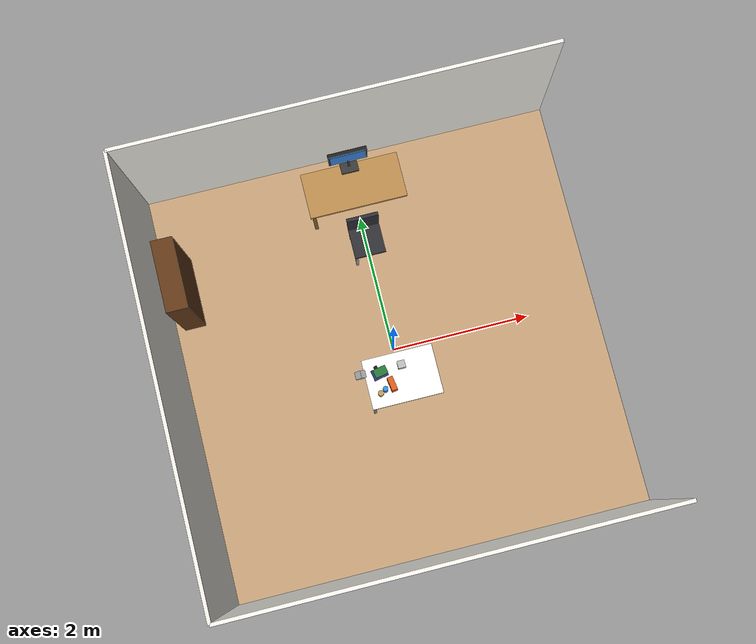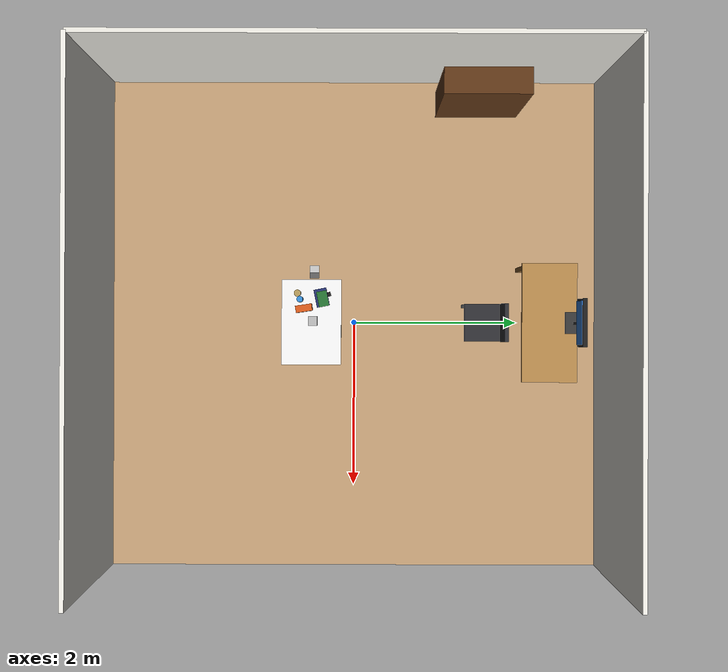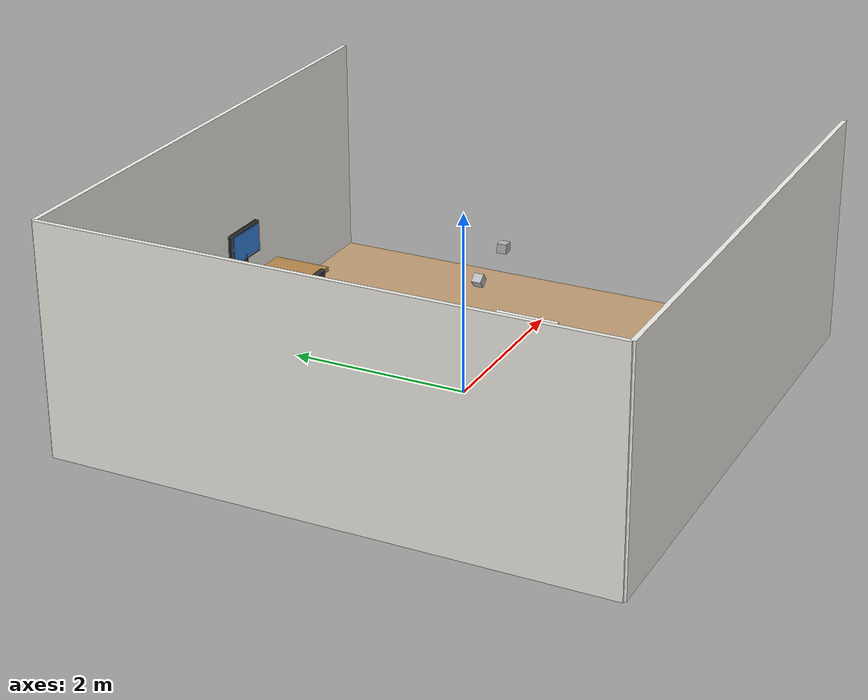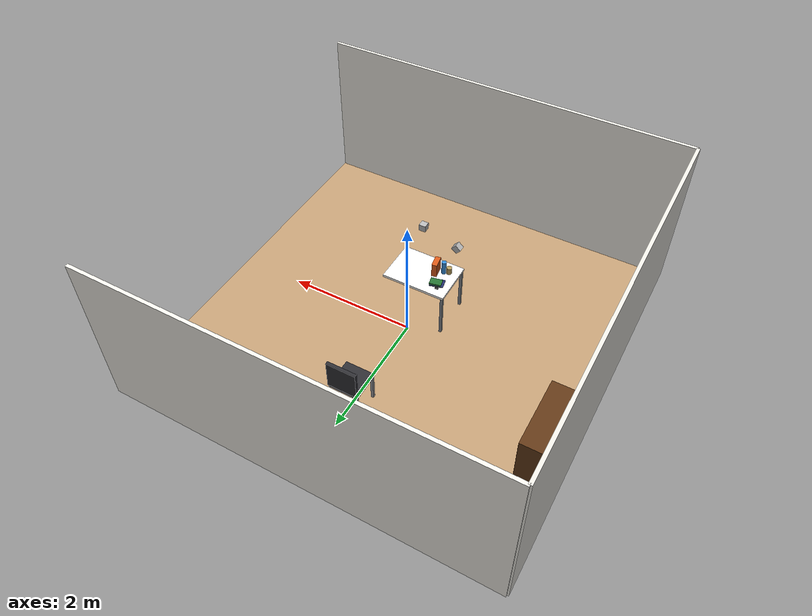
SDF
<sdf version="1.10">
 <world name="bps_room">
  <model name="floor">
   <static>true</static>
   <link name="link">
    <collision name="collision"><geometry><box><size>6 6 0.02</size></box></geometry></collision>
    <visual name="visual">
     <geometry><box><size>6 6 0.02</size></box></geometry>
     <material>
      <ambient>0.75999999 0.620000005 0.460000008 1</ambient>
      <diffuse>0.75999999 0.620000005 0.460000008 1</diffuse>
     </material>
    </visual>
    <inertial>
     <mass>1</mass>
     <inertia><ixx>1</ixx><ixy>0</ixy><ixz>0</ixz><iyy>1</iyy><iyz>0</iyz><izz>1</izz></inertia>
    </inertial>
   </link>
  </model>
  <model name="wall_north">
   <static>true</static>
   <pose>0 3 1.25 0 0 0</pose>
   <link name="link">
    <collision name="collision">
     <geometry><box><size>6 0.050000000000000003 2.5</size></box></geometry>
    </collision>
    <visual name="visual">
     <geometry><box><size>6 0.050000000000000003 2.5</size></box></geometry>
     <material>
      <ambient>0.949999988 0.939999998 0.910000026 1</ambient>
      <diffuse>0.949999988 0.939999998 0.910000026 1</diffuse>
     </material>
    </visual>
    <inertial>
     <mass>1</mass>
     <inertia><ixx>1</ixx><ixy>0</ixy><ixz>0</ixz><iyy>1</iyy><iyz>0</iyz><izz>1</izz></inertia>
    </inertial>
   </link>
  </model>
  <model name="wall_south">
   <static>true</static>
   <pose>0 -3 1.25 0 0 0</pose>
   <link name="link">
    <collision name="collision">
     <geometry><box><size>6 0.050000000000000003 2.5</size></box></geometry>
    </collision>
    <visual name="visual">
     <geometry><box><size>6 0.050000000000000003 2.5</size></box></geometry>
     <material>
      <ambient>0.949999988 0.939999998 0.910000026 1</ambient>
      <diffuse>0.949999988 0.939999998 0.910000026 1</diffuse>
     </material>
    </visual>
    <inertial>
     <mass>1</mass>
     <inertia><ixx>1</ixx><ixy>0</ixy><ixz>0</ixz><iyy>1</iyy><iyz>0</iyz><izz>1</izz></inertia>
    </inertial>
   </link>
  </model>
  <model name="wall_west">
   <static>true</static>
   <pose>-3 0 1.25 0 0 0</pose>
   <link name="link">
    <collision name="collision">
     <geometry><box><size>0.050000000000000003 6 2.5</size></box></geometry>
    </collision>
    <visual name="visual">
     <geometry><box><size>0.050000000000000003 6 2.5</size></box></geometry>
     <material>
      <ambient>0.930000007 0.920000017 0.889999986 1</ambient>
      <diffuse>0.930000007 0.920000017 0.889999986 1</diffuse>
     </material>
    </visual>
    <inertial>
     <mass>1</mass>
     <inertia><ixx>1</ixx><ixy>0</ixy><ixz>0</ixz><iyy>1</iyy><iyz>0</iyz><izz>1</izz></inertia>
    </inertial>
   </link>
  </model>
  <model name="bookshelf_body">
   <static>true</static>
   <pose>-2.7000000000000002 1.5 0.75 0 0 0</pose>
   <link name="link">
    <collision name="collision"><geometry><box><size>0.29999999999999999 1 1.5</size></box></geometry></collision>
    <visual name="visual">
     <geometry><box><size>0.29999999999999999 1 1.5</size></box></geometry>
     <material>
      <ambient>0.379999995 0.219999999 0.0900000036 1</ambient>
      <diffuse>0.379999995 0.219999999 0.0900000036 1</diffuse>
     </material>
    </visual>
    <inertial>
     <mass>1</mass>
     <inertia><ixx>1</ixx><ixy>0</ixy><ixz>0</ixz><iyy>1</iyy><iyz>0</iyz><izz>1</izz></inertia>
    </inertial>
   </link>
  </model>
  <model name="shelf_1">
   <static>true</static>
   <pose>-2.7000000000000002 1.5 0.40000000000000002 0 0 0</pose>
   <link name="link">
    <collision name="collision">
     <geometry><box><size>0.28000000000000003 0.94999999999999996 0.02</size></box></geometry>
    </collision>
    <visual name="visual">
     <geometry><box><size>0.28000000000000003 0.94999999999999996 0.02</size></box></geometry>
     <material>
      <ambient>0.5 0.319999993 0.140000001 1</ambient>
      <diffuse>0.5 0.319999993 0.140000001 1</diffuse>
     </material>
    </visual>
    <inertial>
     <mass>1</mass>
     <inertia><ixx>1</ixx><ixy>0</ixy><ixz>0</ixz><iyy>1</iyy><iyz>0</iyz><izz>1</izz></inertia>
    </inertial>
   </link>
  </model>
  <model name="shelf_2">
   <static>true</static>
   <pose>-2.7000000000000002 1.5 0.84999999999999998 0 0 0</pose>
   <link name="link">
    <collision name="collision">
     <geometry><box><size>0.28000000000000003 0.94999999999999996 0.02</size></box></geometry>
    </collision>
    <visual name="visual">
     <geometry><box><size>0.28000000000000003 0.94999999999999996 0.02</size></box></geometry>
     <material>
      <ambient>0.5 0.319999993 0.140000001 1</ambient>
      <diffuse>0.5 0.319999993 0.140000001 1</diffuse>
     </material>
    </visual>
    <inertial>
     <mass>1</mass>
     <inertia><ixx>1</ixx><ixy>0</ixy><ixz>0</ixz><iyy>1</iyy><iyz>0</iyz><izz>1</izz></inertia>
    </inertial>
   </link>
  </model>
  <model name="shelf_3">
   <static>true</static>
   <pose>-2.7000000000000002 1.5 1.25 0 0 0</pose>
   <link name="link">
    <collision name="collision">
     <geometry><box><size>0.28000000000000003 0.94999999999999996 0.02</size></box></geometry>
    </collision>
    <visual name="visual">
     <geometry><box><size>0.28000000000000003 0.94999999999999996 0.02</size></box></geometry>
     <material>
      <ambient>0.5 0.319999993 0.140000001 1</ambient>
      <diffuse>0.5 0.319999993 0.140000001 1</diffuse>
     </material>
    </visual>
    <inertial>
     <mass>1</mass>
     <inertia><ixx>1</ixx><ixy>0</ixy><ixz>0</ixz><iyy>1</iyy><iyz>0</iyz><izz>1</izz></inertia>
    </inertial>
   </link>
  </model>
  <model name="books_row1">
   <static>true</static>
   <pose>-2.6200000000000001 1.5 0.62 0 0 0</pose>
   <link name="link">
    <visual name="visual">
     <geometry><box><size>0.040000000000000001 0.80000000000000004 0.20000000000000001</size></box></geometry>
     <material>
      <ambient>0.779999971 0.180000007 0.180000007 1</ambient>
      <diffuse>0.779999971 0.180000007 0.180000007 1</diffuse>
     </material>
    </visual>
    <inertial>
     <mass>1</mass>
     <inertia><ixx>1</ixx><ixy>0</ixy><ixz>0</ixz><iyy>1</iyy><iyz>0</iyz><izz>1</izz></inertia>
    </inertial>
   </link>
  </model>
  <model name="books_row2">
   <static>true</static>
   <pose>-2.6200000000000001 1.5 1.0600000000000001 0 0 0</pose>
   <link name="link">
    <visual name="visual">
     <geometry><box><size>0.040000000000000001 0.69999999999999996 0.17999999999999999</size></box></geometry>
     <material>
      <ambient>0.180000007 0.319999993 0.720000029 1</ambient>
      <diffuse>0.180000007 0.319999993 0.720000029 1</diffuse>
     </material>
    </visual>
    <inertial>
     <mass>1</mass>
     <inertia><ixx>1</ixx><ixy>0</ixy><ixz>0</ixz><iyy>1</iyy><iyz>0</iyz><izz>1</izz></inertia>
    </inertial>
   </link>
  </model>
  <model name="desk">
   <static>true</static>
   <pose>0 2.2999999999999998 0.75 0 0 0</pose>
   <link name="link">
    <collision name="collision">
     <geometry><box><size>1.3999999999999999 0.65000000000000002 0.050000000000000003</size></box></geometry>
    </collision>
    <visual name="visual">
     <geometry><box><size>1.3999999999999999 0.65000000000000002 0.050000000000000003</size></box></geometry>
     <material>
      <ambient>0.720000029 0.540000021 0.300000012 1</ambient>
      <diffuse>0.720000029 0.540000021 0.300000012 1</diffuse>
     </material>
    </visual>
    <inertial>
     <mass>1</mass>
     <inertia><ixx>1</ixx><ixy>0</ixy><ixz>0</ixz><iyy>1</iyy><iyz>0</iyz><izz>1</izz></inertia>
    </inertial>
   </link>
  </model>
  <model name="desk_leg_left">
   <static>true</static>
   <pose>-0.65000000000000002 2.2999999999999998 0.375 0 0 0</pose>
   <link name="link">
    <collision name="collision">
     <geometry><box><size>0.050000000000000003 0.59999999999999998 0.75</size></box></geometry>
    </collision>
    <visual name="visual">
     <geometry><box><size>0.050000000000000003 0.59999999999999998 0.75</size></box></geometry>
     <material>
      <ambient>0.550000012 0.379999995 0.180000007 1</ambient>
      <diffuse>0.550000012 0.379999995 0.180000007 1</diffuse>
     </material>
    </visual>
    <inertial>
     <mass>1</mass>
     <inertia><ixx>1</ixx><ixy>0</ixy><ixz>0</ixz><iyy>1</iyy><iyz>0</iyz><izz>1</izz></inertia>
    </inertial>
   </link>
  </model>
  <model name="monitor_base">
   <static>true</static>
   <pose>0 2.5499999999999998 0.81999999999999995 0 0 0</pose>
   <link name="link">
    <collision name="collision">
     <geometry><box><size>0.25 0.14999999999999999 0.040000000000000001</size></box></geometry>
    </collision>
    <visual name="visual">
     <geometry><box><size>0.25 0.14999999999999999 0.040000000000000001</size></box></geometry>
     <material>
      <ambient>0.219999999 0.219999999 0.219999999 1</ambient>
      <diffuse>0.219999999 0.219999999 0.219999999 1</diffuse>
     </material>
    </visual>
    <inertial>
     <mass>1</mass>
     <inertia><ixx>1</ixx><ixy>0</ixy><ixz>0</ixz><iyy>1</iyy><iyz>0</iyz><izz>1</izz></inertia>
    </inertial>
   </link>
  </model>
  <model name="monitor_stand">
   <static>true</static>
   <pose>0 2.5800000000000001 0.96999999999999997 0 0 0</pose>
   <link name="link">
    <collision name="collision">
     <geometry><box><size>0.029999999999999999 0.029999999999999999 0.26000000000000001</size></box></geometry>
    </collision>
    <visual name="visual">
     <geometry><box><size>0.029999999999999999 0.029999999999999999 0.26000000000000001</size></box></geometry>
     <material>
      <ambient>0.219999999 0.219999999 0.219999999 1</ambient>
      <diffuse>0.219999999 0.219999999 0.219999999 1</diffuse>
     </material>
    </visual>
    <inertial>
     <mass>1</mass>
     <inertia><ixx>1</ixx><ixy>0</ixy><ixz>0</ixz><iyy>1</iyy><iyz>0</iyz><izz>1</izz></inertia>
    </inertial>
   </link>
  </model>
  <model name="monitor_screen">
   <static>true</static>
   <pose>0 2.6000000000000001 1.2 0 0 0</pose>
   <link name="link">
    <collision name="collision">
     <geometry><box><size>0.55000000000000004 0.050000000000000003 0.34999999999999998</size></box></geometry>
    </collision>
    <visual name="visual">
     <geometry><box><size>0.55000000000000004 0.050000000000000003 0.34999999999999998</size></box></geometry>
     <material>
      <ambient>0.119999997 0.119999997 0.119999997 1</ambient>
      <diffuse>0.119999997 0.119999997 0.119999997 1</diffuse>
     </material>
    </visual>
    <inertial>
     <mass>1</mass>
     <inertia><ixx>1</ixx><ixy>0</ixy><ixz>0</ixz><iyy>1</iyy><iyz>0</iyz><izz>1</izz></inertia>
    </inertial>
   </link>
  </model>
  <model name="monitor_face">
   <static>true</static>
   <pose>0 2.5699999999999998 1.2 0 0 0</pose>
   <link name="link">
    <visual name="visual">
     <geometry><box><size>0.5 0.01 0.29999999999999999</size></box></geometry>
     <material>
      <ambient>0.219999999 0.519999981 0.879999995 1</ambient>
      <diffuse>0.219999999 0.519999981 0.879999995 1</diffuse>
      <emissive>0.100000001 0.25 0.449999988 1</emissive>
     </material>
    </visual>
    <inertial>
     <mass>1</mass>
     <inertia><ixx>1</ixx><ixy>0</ixy><ixz>0</ixz><iyy>1</iyy><iyz>0</iyz><izz>1</izz></inertia>
    </inertial>
   </link>
  </model>
  <model name="chair_seat">
   <static>true</static>
   <pose>0 1.55 0.47999999999999998 0 0 0</pose>
   <link name="link">
    <collision name="collision">
     <geometry><box><size>0.45000000000000001 0.45000000000000001 0.050000000000000003</size></box></geometry>
    </collision>
    <visual name="visual">
     <geometry><box><size>0.45000000000000001 0.45000000000000001 0.050000000000000003</size></box></geometry>
     <material>
      <ambient>0.180000007 0.180000007 0.200000003 1</ambient>
      <diffuse>0.180000007 0.180000007 0.200000003 1</diffuse>
     </material>
    </visual>
    <inertial>
     <mass>1</mass>
     <inertia><ixx>1</ixx><ixy>0</ixy><ixz>0</ixz><iyy>1</iyy><iyz>0</iyz><izz>1</izz></inertia>
    </inertial>
   </link>
  </model>
  <model name="chair_back">
   <static>true</static>
   <pose>0 1.77 0.75 0 0 0</pose>
   <link name="link">
    <collision name="collision">
     <geometry><box><size>0.45000000000000001 0.050000000000000003 0.45000000000000001</size></box></geometry>
    </collision>
    <visual name="visual">
     <geometry><box><size>0.45000000000000001 0.050000000000000003 0.45000000000000001</size></box></geometry>
     <material>
      <ambient>0.180000007 0.180000007 0.200000003 1</ambient>
      <diffuse>0.180000007 0.180000007 0.200000003 1</diffuse>
     </material>
    </visual>
    <inertial>
     <mass>1</mass>
     <inertia><ixx>1</ixx><ixy>0</ixy><ixz>0</ixz><iyy>1</iyy><iyz>0</iyz><izz>1</izz></inertia>
    </inertial>
   </link>
  </model>
  <model name="chair_leg_fl">
   <static>true</static>
   <pose>-0.20000000000000001 1.3500000000000001 0.23999999999999999 0 0 0</pose>
   <link name="link">
    <collision name="collision">
     <geometry><box><size>0.040000000000000001 0.040000000000000001 0.47999999999999998</size></box></geometry>
    </collision>
    <visual name="visual">
     <geometry><box><size>0.040000000000000001 0.040000000000000001 0.47999999999999998</size></box></geometry>
     <material>
      <ambient>0.600000024 0.600000024 0.620000005 1</ambient>
      <diffuse>0.600000024 0.600000024 0.620000005 1</diffuse>
     </material>
    </visual>
    <inertial>
     <mass>1</mass>
     <inertia><ixx>1</ixx><ixy>0</ixy><ixz>0</ixz><iyy>1</iyy><iyz>0</iyz><izz>1</izz></inertia>
    </inertial>
   </link>
  </model>
  <model name="chair_leg_bl">
   <static>true</static>
   <pose>-0.20000000000000001 1.75 0.23999999999999999 0 0 0</pose>
   <link name="link">
    <collision name="collision">
     <geometry><box><size>0.040000000000000001 0.040000000000000001 0.47999999999999998</size></box></geometry>
    </collision>
    <visual name="visual">
     <geometry><box><size>0.040000000000000001 0.040000000000000001 0.47999999999999998</size></box></geometry>
     <material>
      <ambient>0.600000024 0.600000024 0.620000005 1</ambient>
      <diffuse>0.600000024 0.600000024 0.620000005 1</diffuse>
     </material>
    </visual>
    <inertial>
     <mass>1</mass>
     <inertia><ixx>1</ixx><ixy>0</ixy><ixz>0</ixz><iyy>1</iyy><iyz>0</iyz><izz>1</izz></inertia>
    </inertial>
   </link>
  </model>
  <model name="experiment_table">
   <static>true</static>
   <pose>0 -0.5 0.75 0 0 0</pose>
   <link name="link">
    <collision name="collision">
     <geometry><box><size>1 0.69999999999999996 0.040000000000000001</size></box></geometry>
    </collision>
    <visual name="visual">
     <geometry><box><size>1 0.69999999999999996 0.040000000000000001</size></box></geometry>
     <material>
      <ambient>0.959999979 0.959999979 0.959999979 1</ambient>
      <diffuse>0.959999979 0.959999979 0.959999979 1</diffuse>
     </material>
    </visual>
    <inertial>
     <mass>1</mass>
     <inertia><ixx>1</ixx><ixy>0</ixy><ixz>0</ixz><iyy>1</iyy><iyz>0</iyz><izz>1</izz></inertia>
    </inertial>
   </link>
  </model>
  <model name="table_leg_fl">
   <static>true</static>
   <pose>-0.46999999999999997 -0.81999999999999995 0.375 0 0 0</pose>
   <link name="link">
    <collision name="collision">
     <geometry><box><size>0.040000000000000001 0.040000000000000001 0.75</size></box></geometry>
    </collision>
    <visual name="visual">
     <geometry><box><size>0.040000000000000001 0.040000000000000001 0.75</size></box></geometry>
     <material>
      <ambient>0.5 0.519999981 0.540000021 1</ambient>
      <diffuse>0.5 0.519999981 0.540000021 1</diffuse>
     </material>
    </visual>
    <inertial>
     <mass>1</mass>
     <inertia><ixx>1</ixx><ixy>0</ixy><ixz>0</ixz><iyy>1</iyy><iyz>0</iyz><izz>1</izz></inertia>
    </inertial>
   </link>
  </model>
  <model name="table_leg_bl">
   <static>true</static>
   <pose>-0.46999999999999997 -0.17999999999999999 0.375 0 0 0</pose>
   <link name="link">
    <collision name="collision">
     <geometry><box><size>0.040000000000000001 0.040000000000000001 0.75</size></box></geometry>
    </collision>
    <visual name="visual">
     <geometry><box><size>0.040000000000000001 0.040000000000000001 0.75</size></box></geometry>
     <material>
      <ambient>0.5 0.519999981 0.540000021 1</ambient>
      <diffuse>0.5 0.519999981 0.540000021 1</diffuse>
     </material>
    </visual>
    <inertial>
     <mass>1</mass>
     <inertia><ixx>1</ixx><ixy>0</ixy><ixz>0</ixz><iyy>1</iyy><iyz>0</iyz><izz>1</izz></inertia>
    </inertial>
   </link>
  </model>
  <model name="obj_cereal_box">
   <static>false</static>
   <pose>-0.16259999999999999 -0.58120000000000005 0.88500000000000001 0 0 0.14999999999999988</pose>
   <link name="link">
    <collision name="collision">
     <geometry><box><size>0.080000000000000002 0.19 0.23000000000000001</size></box></geometry>
    </collision>
    <visual name="visual">
     <geometry><box><size>0.080000000000000002 0.19 0.23000000000000001</size></box></geometry>
     <material>
      <ambient>0.850000024 0.349999994 0.100000001 1</ambient>
      <diffuse>0.850000024 0.349999994 0.100000001 1</diffuse>
      <specular>0.200000003 0.200000003 0.200000003 1</specular>
     </material>
     <plugin name="gz::sim::systems::Label" filename="gz-sim-label-system"><label>1</label></plugin>
    </visual>
    <inertial>
     <mass>1</mass>
     <inertia><ixx>1</ixx><ixy>0</ixy><ixz>0</ixz><iyy>1</iyy><iyz>0</iyz><izz>1</izz></inertia>
    </inertial>
    <sensor name="obj_cereal_box_contact_sensor" type="contact">
     <contact><collision>collision</collision></contact>
     <update_rate>30</update_rate>
     <always_on>true</always_on>
    </sensor>
   </link>
  </model>
  <model name="obj_bottle">
   <static>false</static>
   <pose>-0.26769999999999999 -0.628 0.88 0 0 0</pose>
   <link name="link">
    <collision name="collision">
     <geometry><cylinder><radius>0.035000000000000003</radius><length>0.22</length></cylinder></geometry>
    </collision>
    <visual name="visual">
     <geometry><cylinder><radius>0.035000000000000003</radius><length>0.22</length></cylinder></geometry>
     <material>
      <ambient>0.200000003 0.550000012 0.850000024 1</ambient>
      <diffuse>0.200000003 0.550000012 0.850000024 1</diffuse>
      <specular>0.600000024 0.600000024 0.600000024 1</specular>
     </material>
     <plugin name="gz::sim::systems::Label" filename="gz-sim-label-system"><label>2</label></plugin>
    </visual>
    <inertial>
     <mass>1</mass>
     <inertia><ixx>1</ixx><ixy>0</ixy><ixz>0</ixz><iyy>1</iyy><iyz>0</iyz><izz>1</izz></inertia>
    </inertial>
    <sensor name="obj_bottle_contact_sensor" type="contact">
     <contact><collision>collision</collision></contact>
     <update_rate>30</update_rate>
     <always_on>true</always_on>
    </sensor>
   </link>
  </model>
  <model name="obj_jar">
   <static>false</static>
   <pose>-0.3407 -0.66039999999999999 0.82499999999999996 0 0 0</pose>
   <link name="link">
    <collision name="collision">
     <geometry><cylinder><radius>0.040000000000000001</radius><length>0.11</length></cylinder></geometry>
    </collision>
    <visual name="visual">
     <geometry><cylinder><radius>0.040000000000000001</radius><length>0.11</length></cylinder></geometry>
     <material>
      <ambient>0.699999988 0.600000024 0.349999994 1</ambient>
      <diffuse>0.699999988 0.600000024 0.349999994 1</diffuse>
      <specular>0.5 0.5 0.5 1</specular>
     </material>
     <plugin name="gz::sim::systems::Label" filename="gz-sim-label-system"><label>3</label></plugin>
    </visual>
    <inertial>
     <mass>1</mass>
     <inertia><ixx>1</ixx><ixy>0</ixy><ixz>0</ixz><iyy>1</iyy><iyz>0</iyz><izz>1</izz></inertia>
    </inertial>
    <sensor name="obj_jar_contact_sensor" type="contact">
     <contact><collision>collision</collision></contact>
     <update_rate>30</update_rate>
     <always_on>true</always_on>
    </sensor>
   </link>
  </model>
  <model name="obj_remote">
   <static>false</static>
   <pose>-0.31 -0.34999999999999998 0.78000000000000003 0 0 0.30000000000000021</pose>
   <link name="link">
    <collision name="collision">
     <geometry><box><size>0.050000000000000003 0.16 0.02</size></box></geometry>
    </collision>
    <visual name="visual">
     <geometry><box><size>0.050000000000000003 0.16 0.02</size></box></geometry>
     <material>
      <ambient>0.100000001 0.100000001 0.100000001 1</ambient>
      <diffuse>0.100000001 0.100000001 0.100000001 1</diffuse>
      <specular>0.300000012 0.300000012 0.300000012 1</specular>
     </material>
     <plugin name="gz::sim::systems::Label" filename="gz-sim-label-system"><label>9</label></plugin>
    </visual>
    <inertial>
     <mass>1</mass>
     <inertia><ixx>1</ixx><ixy>0</ixy><ixz>0</ixz><iyy>1</iyy><iyz>0</iyz><izz>1</izz></inertia>
    </inertial>
    <sensor name="obj_remote_contact_sensor" type="contact">
     <contact><collision>collision</collision></contact>
     <update_rate>30</update_rate>
     <always_on>true</always_on>
    </sensor>
   </link>
  </model>
  <model name="obj_notebook">
   <static>false</static>
   <pose>-0.28999999999999998 -0.38 0.78300000000000003 1.7417728959190634e-18 0.090000000000000038 0.19999999999999998</pose>
   <link name="link">
    <collision name="collision">
     <geometry><box><size>0.20999999999999999 0.14999999999999999 0.014999999999999999</size></box></geometry>
    </collision>
    <visual name="visual">
     <geometry><box><size>0.20999999999999999 0.14999999999999999 0.014999999999999999</size></box></geometry>
     <material>
      <ambient>0.150000006 0.200000003 0.449999988 1</ambient>
      <diffuse>0.150000006 0.200000003 0.449999988 1</diffuse>
     </material>
     <plugin name="gz::sim::systems::Label" filename="gz-sim-label-system"><label>10</label></plugin>
    </visual>
    <inertial>
     <mass>1</mass>
     <inertia><ixx>1</ixx><ixy>0</ixy><ixz>0</ixz><iyy>1</iyy><iyz>0</iyz><izz>1</izz></inertia>
    </inertial>
    <sensor name="obj_notebook_contact_sensor" type="contact">
     <contact><collision>collision</collision></contact>
     <update_rate>30</update_rate>
     <always_on>true</always_on>
    </sensor>
   </link>
  </model>
  <model name="obj_book">
   <static>false</static>
   <pose>-0.27500000000000002 -0.36499999999999999 0.80500000000000005 0 0 0.20000000000000009</pose>
   <link name="link">
    <collision name="collision">
     <geometry><box><size>0.17999999999999999 0.12 0.029999999999999999</size></box></geometry>
    </collision>
    <visual name="visual">
     <geometry><box><size>0.17999999999999999 0.12 0.029999999999999999</size></box></geometry>
     <material>
      <ambient>0.150000006 0.449999988 0.200000003 1</ambient>
      <diffuse>0.150000006 0.449999988 0.200000003 1</diffuse>
     </material>
     <plugin name="gz::sim::systems::Label" filename="gz-sim-label-system"><label>11</label></plugin>
    </visual>
    <inertial>
     <mass>1</mass>
     <inertia><ixx>1</ixx><ixy>0</ixy><ixz>0</ixz><iyy>1</iyy><iyz>0</iyz><izz>1</izz></inertia>
    </inertial>
    <sensor name="obj_book_contact_sensor" type="contact">
     <contact><collision>collision</collision></contact>
     <update_rate>30</update_rate>
     <always_on>true</always_on>
    </sensor>
   </link>
  </model>
  <model name="depth_camera">
   <static>true</static>
   <pose>-0.060530148446559906 -0.5 1.7741203308105469 3.1415899979989477 1.57079000476762 3.1415899979989477</pose>
   <link name="link">
    <pose>0.050000000000000003 0.050000000000000003 0.050000000000000003 0 0 0</pose>
    <inertial>
     <mass>0.10000000000000001</mass>
     <inertia>
      <ixx>0.00016666700000000001</ixx>
      <iyy>0.00016666700000000001</iyy>
      <izz>0.00016666700000000001</izz>
      <ixy>0</ixy>
      <ixz>0</ixz>
      <iyz>0</iyz>
     </inertia>
    </inertial>
    <collision name="collision">
     <geometry><box><size>0.10000000000000001 0.10000000000000001 0.10000000000000001</size></box></geometry>
    </collision>
    <visual name="visual">
     <geometry><box><size>0.10000000000000001 0.10000000000000001 0.10000000000000001</size></box></geometry>
    </visual>
    <sensor name="depth_camera1" type="depth_camera">
     <topic>depth_camera</topic>
     <update_rate>10</update_rate>
     <enable_metrics>false</enable_metrics>
     <camera>
      <horizontal_fov>1.2</horizontal_fov>
      <image>
       <width>640</width>
       <height>480</height>
       <format>R_FLOAT32</format>
       <anti_aliasing>4</anti_aliasing>
      </image>
      <camera_info_topic>__default__</camera_info_topic>
      <triggered>false</triggered>
      <clip><near>0.10000000000000001</near><far>2</far></clip>
      <save enabled="false"><path>__default__</path></save>
      <visibility_mask>4294967295</visibility_mask>
      <noise><type>none</type><mean>0</mean><stddev>0</stddev></noise>
      <distortion><k1>0</k1><k2>0</k2><k3>0</k3><p1>0</p1><p2>0</p2><center>0.5 0.5</center></distortion>
      <lens>
       <type>stereographic</type>
       <scale_to_hfov>true</scale_to_hfov>
       <cutoff_angle>1.5707963267948966</cutoff_angle>
       <env_texture_size>256</env_texture_size>
      </lens>
     </camera>
    </sensor>
    <sensor name="rgb_camera" type="camera">
     <topic>rgb_camera</topic>
     <update_rate>10</update_rate>
     <enable_metrics>false</enable_metrics>
     <camera>
      <horizontal_fov>1.2</horizontal_fov>
      <image><width>640</width><height>480</height><format>RGB_INT8</format><anti_aliasing>4</anti_aliasing></image>
      <camera_info_topic>__default__</camera_info_topic>
      <triggered>false</triggered>
      <clip><near>0.10000000000000001</near><far>2</far></clip>
      <save enabled="false"><path>__default__</path></save>
      <visibility_mask>4294967295</visibility_mask>
      <noise><type>none</type><mean>0</mean><stddev>0</stddev></noise>
      <distortion><k1>0</k1><k2>0</k2><k3>0</k3><p1>0</p1><p2>0</p2><center>0.5 0.5</center></distortion>
      <lens>
       <type>stereographic</type>
       <scale_to_hfov>true</scale_to_hfov>
       <cutoff_angle>1.5707963267948966</cutoff_angle>
       <env_texture_size>256</env_texture_size>
      </lens>
     </camera>
    </sensor>
    <sensor name="semantic_camera" type="segmentation_camera">
     <topic>semantic_camera</topic>
     <update_rate>10</update_rate>
     <enable_metrics>false</enable_metrics>
     <camera>
      <horizontal_fov>1.2</horizontal_fov>
      <image><width>640</width><height>480</height></image>
      <clip><near>0.1</near><far>100</far></clip>
      <segmentation_type>semantic</segmentation_type>
     </camera>
    </sensor>
   </link>
  </model>
  <model name="depth_camera_v4">
   <static>true</static>
   <pose>-0.624511139098304 -0.4859588235294117 1.582838560766037 -0.0 0.8726646259971648 -8.636002062691952e-17</pose>
   <link name="link">
    <pose>0.050000000000000003 0.050000000000000003 0.050000000000000003 0 0 0</pose>
    <inertial>
     <mass>0.10000000000000001</mass>
     <inertia>
      <ixx>0.00016666700000000001</ixx>
      <iyy>0.00016666700000000001</iyy>
      <izz>0.00016666700000000001</izz>
      <ixy>0</ixy>
      <ixz>0</ixz>
      <iyz>0</iyz>
     </inertia>
    </inertial>
    <collision name="collision">
     <geometry><box><size>0.10000000000000001 0.10000000000000001 0.10000000000000001</size></box></geometry>
    </collision>
    <visual name="visual">
     <geometry><box><size>0.10000000000000001 0.10000000000000001 0.10000000000000001</size></box></geometry>
    </visual>
    <sensor name="depth_camera4" type="depth_camera">
     <topic>depth_camera_v4</topic>
     <update_rate>10</update_rate>
     <enable_metrics>false</enable_metrics>
     <camera>
      <horizontal_fov>1.2</horizontal_fov>
      <image>
       <width>640</width>
       <height>480</height>
       <format>R_FLOAT32</format>
       <anti_aliasing>4</anti_aliasing>
      </image>
      <camera_info_topic>__default__</camera_info_topic>
      <triggered>false</triggered>
      <clip><near>0.10000000000000001</near><far>2</far></clip>
      <save enabled="false"><path>__default__</path></save>
      <visibility_mask>4294967295</visibility_mask>
      <noise><type>none</type><mean>0</mean><stddev>0</stddev></noise>
      <distortion><k1>0</k1><k2>0</k2><k3>0</k3><p1>0</p1><p2>0</p2><center>0.5 0.5</center></distortion>
      <lens>
       <type>stereographic</type>
       <scale_to_hfov>true</scale_to_hfov>
       <cutoff_angle>1.5707963267948966</cutoff_angle>
       <env_texture_size>256</env_texture_size>
      </lens>
     </camera>
    </sensor>
    <sensor name="rgb_camera4" type="camera">
     <topic>rgb_camera_v4</topic>
     <update_rate>10</update_rate>
     <enable_metrics>false</enable_metrics>
     <camera>
      <horizontal_fov>1.2</horizontal_fov>
      <image><width>640</width><height>480</height><format>RGB_INT8</format><anti_aliasing>4</anti_aliasing></image>
      <camera_info_topic>__default__</camera_info_topic>
      <triggered>false</triggered>
      <clip><near>0.10000000000000001</near><far>2</far></clip>
      <save enabled="false"><path>__default__</path></save>
      <visibility_mask>4294967295</visibility_mask>
      <noise><type>none</type><mean>0</mean><stddev>0</stddev></noise>
      <distortion><k1>0</k1><k2>0</k2><k3>0</k3><p1>0</p1><p2>0</p2><center>0.5 0.5</center></distortion>
      <lens>
       <type>stereographic</type>
       <scale_to_hfov>true</scale_to_hfov>
       <cutoff_angle>1.5707963267948966</cutoff_angle>
       <env_texture_size>256</env_texture_size>
      </lens>
     </camera>
    </sensor>
    <sensor name="semantic_camera4" type="segmentation_camera">
     <topic>semantic_camera_v4</topic>
     <update_rate>10</update_rate>
     <enable_metrics>false</enable_metrics>
     <camera>
      <horizontal_fov>1.2</horizontal_fov>
      <image><width>640</width><height>480</height></image>
      <clip><near>0.1</near><far>100</far></clip>
      <segmentation_type>semantic</segmentation_type>
     </camera>
    </sensor>
   </link>
  </model>
 </world>
</sdf>
